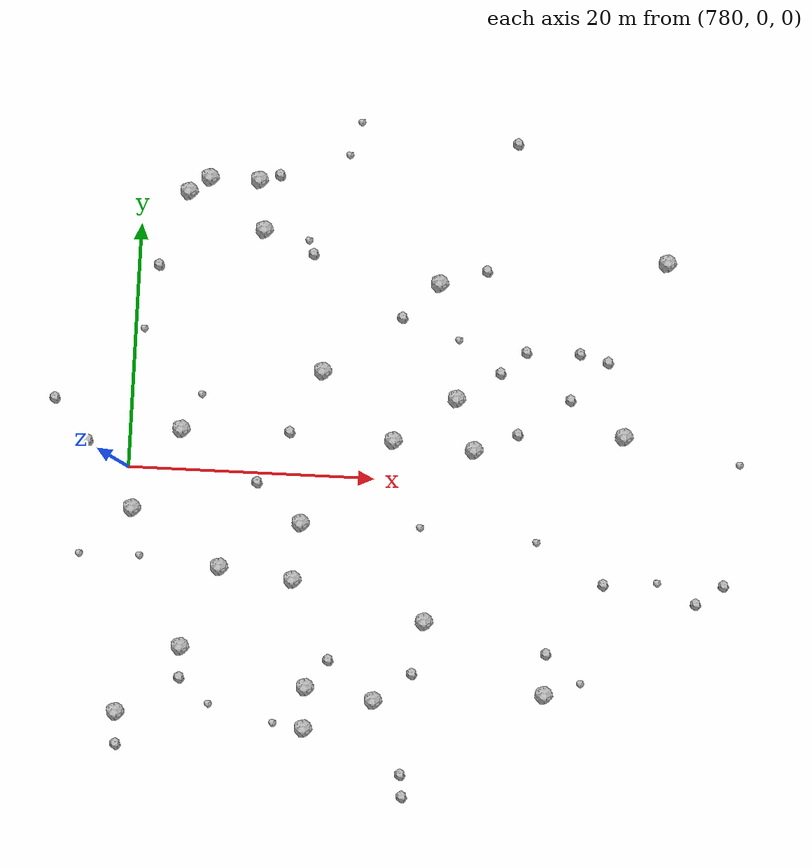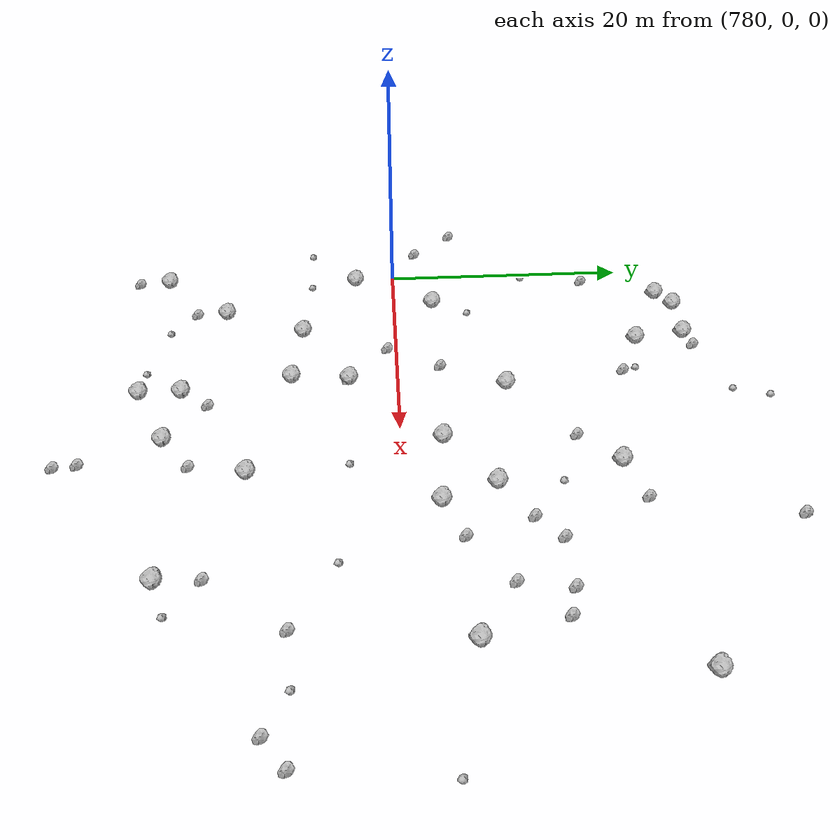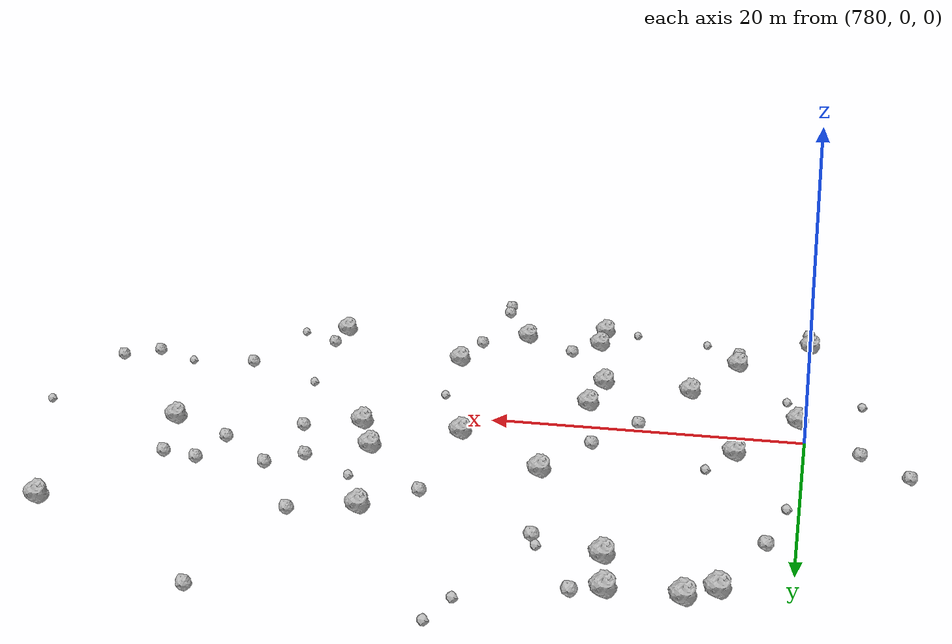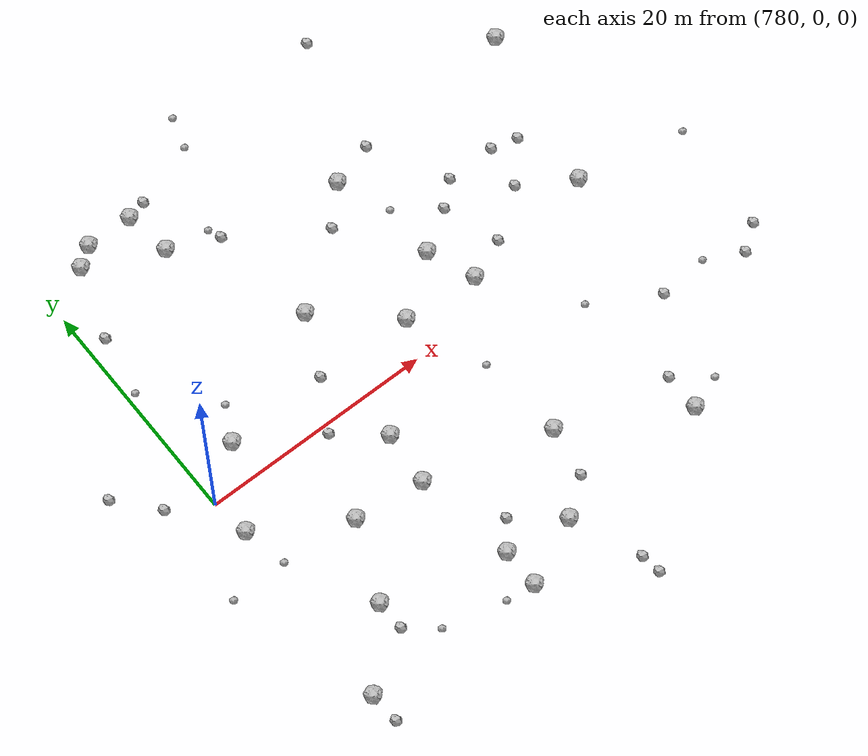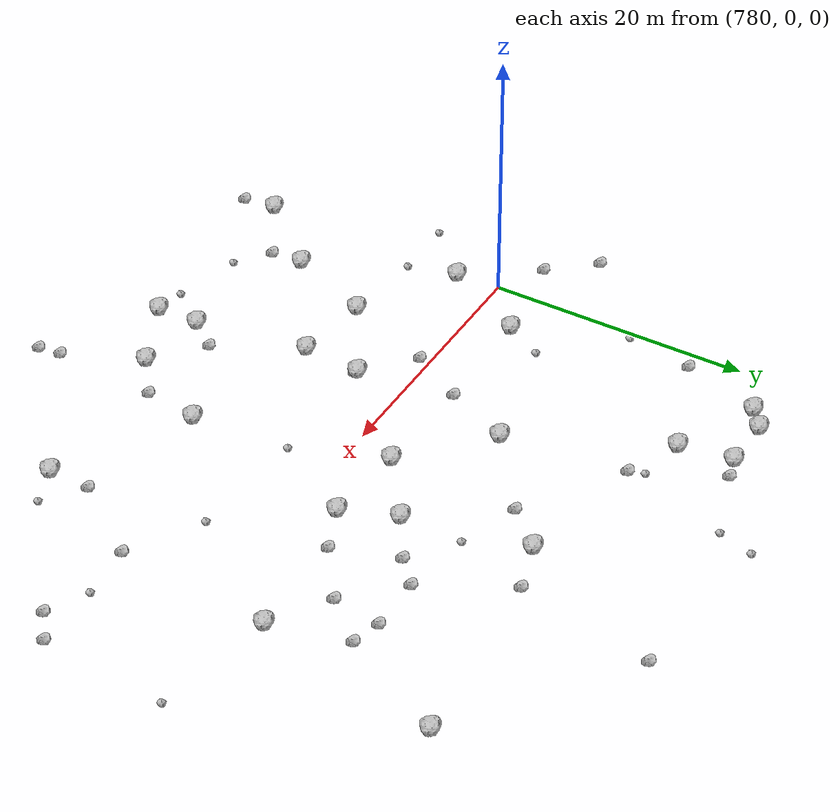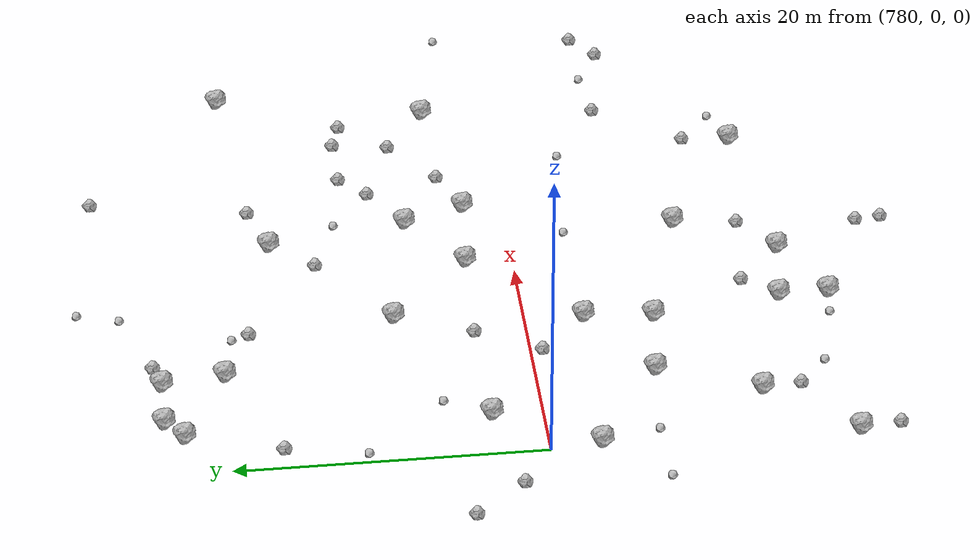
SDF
<sdf version="1.6">
 <world name="default">
  <include><uri>model://sun</uri></include>
  <model name="rock1_20_4">
   <include><uri>model://rock1</uri><pose>814.5196274211668 -16.781149262689397 0.5 0 0 0</pose></include>
  </model>
  <model name="rock1_20_5">
   <include><uri>model://rock1</uri><pose>780.135187118464 -19.748590483706554 0.5 0 0 0</pose></include>
  </model>
  <model name="rock1_20_6">
   <include><uri>model://rock1</uri><pose>808.0205946848952 2.6897216425938097 0.5 0 0 0</pose></include>
  </model>
  <model name="rock1_20_7">
   <include><uri>model://rock1</uri><pose>820.1371178115782 4.346523889573568 0.5 0 0 0</pose></include>
  </model>
  <model name="rock1_20_8">
   <include><uri>model://rock1</uri><pose>804.604146717338 16.179826449451006 0.5 0 0 0</pose></include>
  </model>
  <model name="rock1_20_9">
   <include><uri>model://rock1</uri><pose>789.4799724031152 24.019460483904403 0.5 0 0 0</pose></include>
  </model>
  <model name="rock1_20_10">
   <include><uri>model://rock1</uri><pose>800.8140470769866 -17.873587409536484 0.5 0 0 0</pose></include>
  </model>
  <model name="rock1_20_11">
   <include><uri>model://rock1</uri><pose>790.0903237998099 19.930476576097647 0.5 0 0 0</pose></include>
  </model>
  <model name="rock1_20_12">
   <include><uri>model://rock1</uri><pose>785.0580023433182 -14.286385711522506 0.5 0 0 0</pose></include>
  </model>
  <model name="rock1_20_13">
   <include><uri>model://rock1</uri><pose>787.8542854721381 -7.7339541162677286 0.5 0 0 0</pose></include>
  </model>
  <model name="rock1_20_14">
   <include><uri>model://rock1</uri><pose>793.8255902771031 -8.476662206897977 0.5 0 0 0</pose></include>
  </model>
  <model name="rock1_20_15">
   <include><uri>model://rock1</uri><pose>823.0950911141016 18.720580732860213 0.5 0 0 0</pose></include>
  </model>
  <model name="rock1_20_16">
   <include><uri>model://rock1</uri><pose>783.7878717561236 22.82082691065569 0.5 0 0 0</pose></include>
  </model>
  <model name="rock1_20_17">
   <include><uri>model://rock1</uri><pose>784.2007099648652 3.285215508558899 0.5 0 0 0</pose></include>
  </model>
  <model name="rock1_20_18">
   <include><uri>model://rock1</uri><pose>801.4365033266511 3.1730573973408553 0.5 0 0 0</pose></include>
  </model>
  <model name="rock1_20_19">
   <include><uri>model://rock1</uri><pose>794.256123901317 -3.882006371677118 0.5 0 0 0</pose></include>
  </model>
  <model name="rock1_20_20">
   <include><uri>model://rock1</uri><pose>806.4177306600714 6.815656363736785 0.5 0 0 0</pose></include>
  </model>
  <model name="rock1_20_21">
   <include><uri>model://rock1</uri><pose>795.2875848878632 -17.070178343287175 0.5 0 0 0</pose></include>
  </model>
  <model name="rock1_20_22">
   <include><uri>model://rock1</uri><pose>795.439410567839 8.553707003254551 0.5 0 0 0</pose></include>
  </model>
  <model name="rock1_20_23">
   <include><uri>model://rock1</uri><pose>780.5555356984969 -3.3060551981506308 0.5 0 0 0</pose></include>
  </model>
  <model name="rock1_20_24">
   <include><uri>model://rock1</uri><pose>785.4389748240684 24.038679537352095 0.5 0 0 0</pose></include>
  </model>
  <model name="rock1_20_25">
   <include><uri>model://rock1</uri><pose>804.6090348399558 -11.36013929032876 0.5 0 0 0</pose></include>
  </model>
  <model name="rock1_20_26">
   <include><uri>model://rock1</uri><pose>795.3050460478721 -20.38388513350617 0.5 0 0 0</pose></include>
  </model>
  <model name="rock2_20_0">
   <include><uri>model://rock2</uri><pose>794.2070125289476 18.14842213494577 0.3 0 0 0</pose></include>
  </model>
  <model name="rock2_20_1">
   <include><uri>model://rock2</uri><pose>797.0050456941638 -14.818452336140531 0.3 0 0 0</pose></include>
  </model>
  <model name="rock2_20_2">
   <include><uri>model://rock2</uri><pose>792.9881177415758 3.4761739783318504 0.3 0 0 0</pose></include>
  </model>
  <model name="rock2_20_3">
   <include><uri>model://rock2</uri><pose>828.6519829612216 -7.340889693314271 0.3 0 0 0</pose></include>
  </model>
  <model name="rock2_20_4">
   <include><uri>model://rock2</uri><pose>809.9106303907441 9.08421670831774 0.3 0 0 0</pose></include>
  </model>
  <model name="rock2_20_5">
   <include><uri>model://rock2</uri><pose>803.4511288595494 -25.46621028732929 0.3 0 0 0</pose></include>
  </model>
  <model name="rock2_20_6">
   <include><uri>model://rock2</uri><pose>781.6369669746929 16.664116965734465 0.3 0 0 0</pose></include>
  </model>
  <model name="rock2_20_7">
   <include><uri>model://rock2</uri><pose>773.7642776759468 5.366726446078012 0.3 0 0 0</pose></include>
  </model>
  <model name="rock2_20_8">
   <include><uri>model://rock2</uri><pose>791.1379810570845 24.533557890571963 0.3 0 0 0</pose></include>
  </model>
  <model name="rock2_20_9">
   <include><uri>model://rock2</uri><pose>818.9221244671202 -7.715962668848 0.3 0 0 0</pose></include>
  </model>
  <model name="rock2_20_10">
   <include><uri>model://rock2</uri><pose>776.6319154009852 2.0494159162005943 0.3 0 0 0</pose></include>
  </model>
  <model name="rock2_20_11">
   <include><uri>model://rock2</uri><pose>808.4281277337244 17.408827150142514 0.3 0 0 0</pose></include>
  </model>
  <model name="rock2_20_12">
   <include><uri>model://rock2</uri><pose>810.5041777267385 28.031378476515968 0.3 0 0 0</pose></include>
  </model>
  <model name="rock2_20_13">
   <include><uri>model://rock2</uri><pose>816.3027464801501 10.96743952014144 0.3 0 0 0</pose></include>
  </model>
  <model name="rock2_20_14">
   <include><uri>model://rock2</uri><pose>815.6833681489318 7.145509528960751 0.3 0 0 0</pose></include>
  </model>
  <model name="rock2_20_15">
   <include><uri>model://rock2</uri><pose>803.2406421792847 -23.712284207344105 0.3 0 0 0</pose></include>
  </model>
  <model name="rock2_20_16">
   <include><uri>model://rock2</uri><pose>818.6066350408521 10.373259481545851 0.3 0 0 0</pose></include>
  </model>
  <model name="rock2_20_17">
   <include><uri>model://rock2</uri><pose>785.0744500748991 -16.7831582897204 0.3 0 0 0</pose></include>
  </model>
  <model name="rock2_20_18">
   <include><uri>model://rock2</uri><pose>801.6966678916983 13.263111522056668 0.3 0 0 0</pose></include>
  </model>
  <model name="rock2_20_19">
   <include><uri>model://rock2</uri><pose>814.5441132341034 -13.501837869024598 0.3 0 0 0</pose></include>
  </model>
  <model name="rock2_20_20">
   <include><uri>model://rock2</uri><pose>811.9287269907857 10.895389488986247 0.3 0 0 0</pose></include>
  </model>
  <model name="rock2_20_21">
   <include><uri>model://rock2</uri><pose>780.2420039011861 -22.328887698945543 0.3 0 0 0</pose></include>
  </model>
  <model name="rock2_20_22">
   <include><uri>model://rock2</uri><pose>790.5391469102763 -0.730612802078948 0.3 0 0 0</pose></include>
  </model>
  <model name="rock2_20_23">
   <include><uri>model://rock2</uri><pose>794.3585369549536 -3.9610526972042024 0.3 0 0 0</pose></include>
  </model>
  <model name="rock2_20_24">
   <include><uri>model://rock2</uri><pose>811.5163708601948 4.1422206843145375 0.3 0 0 0</pose></include>
  </model>
  <model name="rock2_20_25">
   <include><uri>model://rock2</uri><pose>826.4586794667997 -8.927119133214763 0.3 0 0 0</pose></include>
  </model>
  <model name="rock2_20_26">
   <include><uri>model://rock2</uri><pose>803.8117396930502 -15.603782038104402 0.3 0 0 0</pose></include>
  </model>
  <model name="rock3_20_0">
   <include><uri>model://rock3</uri><pose>776.4137943404234 -7.180035478404548 0.2 0 0 0</pose></include>
  </model>
  <model name="rock3_20_1">
   <include><uri>model://rock3</uri><pose>829.602567214517 2.515737617036912 0.2 0 0 0</pose></include>
  </model>
  <model name="rock3_20_2">
   <include><uri>model://rock3</uri><pose>785.6760081970431 6.207239135195138 0.2 0 0 0</pose></include>
  </model>
  <model name="rock3_20_3">
   <include><uri>model://rock3</uri><pose>796.7462323468444 26.467739697449005 0.2 0 0 0</pose></include>
  </model>
  <model name="rock3_20_4">
   <include><uri>model://rock3</uri><pose>781.3055411960944 -7.125196166586882 0.2 0 0 0</pose></include>
  </model>
  <model name="rock3_20_5">
   <include><uri>model://rock3</uri><pose>803.9159161072125 -3.814887244786359 0.2 0 0 0</pose></include>
  </model>
  <model name="rock3_20_6">
   <include><uri>model://rock3</uri><pose>806.3847565000787 11.630220278762067 0.2 0 0 0</pose></include>
  </model>
  <model name="rock3_20_7">
   <include><uri>model://rock3</uri><pose>787.4974196625534 -18.797206369355607 0.2 0 0 0</pose></include>
  </model>
  <model name="rock3_20_8">
   <include><uri>model://rock3</uri><pose>792.7752920274597 -20.0905807718339 0.2 0 0 0</pose></include>
  </model>
  <model name="rock3_20_9">
   <include><uri>model://rock3</uri><pose>823.2819520753291 -7.377688490449479 0.2 0 0 0</pose></include>
  </model>
  <model name="rock3_20_10">
   <include><uri>model://rock3</uri><pose>793.7529729641415 19.25112588656721 0.2 0 0 0</pose></include>
  </model>
  <model name="rock3_20_11">
   <include><uri>model://rock3</uri><pose>817.410135169563 -15.767952817508608 0.2 0 0 0</pose></include>
  </model>
  <model name="rock3_20_12">
   <include><uri>model://rock3</uri><pose>813.3845366193743 -4.5643813189005975 0.2 0 0 0</pose></include>
  </model>
  <model name="rock3_20_13">
   <include><uri>model://rock3</uri><pose>780.6949370456235 11.373977797580686 0.2 0 0 0</pose></include>
  </model>
  <model name="rock3_20_14">
   <include><uri>model://rock3</uri><pose>797.5960023531107 29.239719538575457 0.2 0 0 0</pose></include>
  </model>
 </world>
</sdf>
